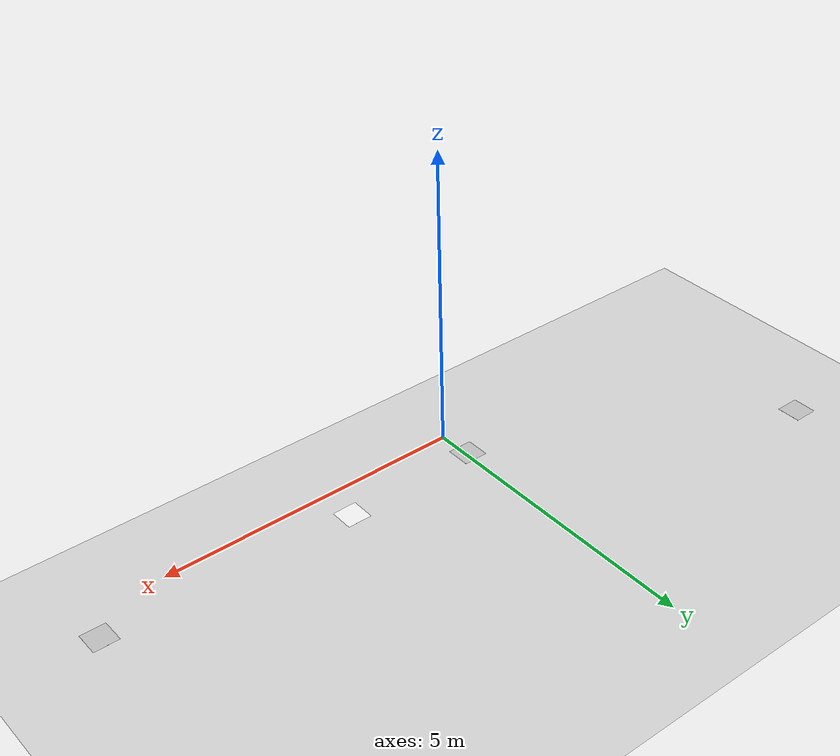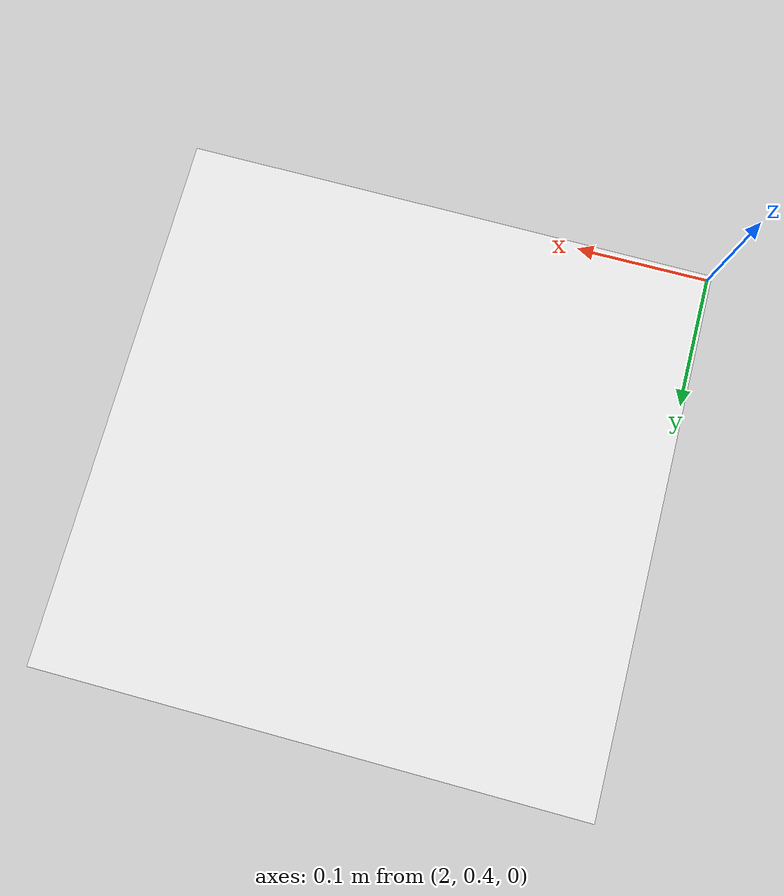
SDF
<sdf version="1.4">
 <world name="default">
  <include><uri>model://sun</uri></include>
  <include><uri>model://ground_plane</uri></include>
  <physics type="ode">
   <real_time_update_rate>1000.0</real_time_update_rate>
   <max_step_size>0.001</max_step_size>
   <real_time_factor>1</real_time_factor>
  </physics>
  <include><uri>model://qr_livingroom</uri><pose>2.2 0.6 0.01 0 0 1.57</pose></include>
  <include><uri>model://qr_corridor</uri><pose>-0.05 0.55 0.01 0 0 1.57</pose></include>
  <include><uri>model://qr_bedroom</uri><pose>6.26 0.48 0.01 0 0 1.57</pose></include>
  <include><uri>model://qr_kitchen</uri><pose>-4.81 3.10 0.01 0 0 1.57</pose></include>
  <scene><ambient>0.4 0.4 0.4 1</ambient><background>0.7 0.5 0.7 1</background><shadows>true</shadows></scene>
 </world>
</sdf>

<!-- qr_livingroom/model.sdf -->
<sdf version="1.4">
  <model name="qr_livingroom">
    <static>true</static>

    <link name="link">
      <visual name="visual">
        <geometry>
          <plane>
            <normal>0 0 1</normal>
            <size>0.4 0.4</size>
          </plane>
        </geometry>

        <material>
          <script>
            <uri>file://media/materials/scripts/gazebo.material</uri>
            <uri>file://media/materials/textures</uri>
            <name>Gazebo/White</name>
          </script>

          <ambient>1 1 1 1</ambient>
          <diffuse>1 1 1 1</diffuse>

          <texture>
            <uri>model://qr_livingroom/materials/textures/qr_livingroom.png</uri>
          </texture>
        </material>
      </visual>
    </link>
  </model>
</sdf>

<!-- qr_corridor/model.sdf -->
<sdf version="1.6">
  <model name="qr_corridor">
    <static>true</static>

    <link name="link">

      <visual name="visual">
        <geometry>
          <plane>
            <size>0.4 0.4</size>
          </plane>
        </geometry>

        <material>
          <script>
            <uri>model://qr_corridor/materials/scripts</uri>
            <uri>model://qr_corridor/materials/textures</uri>
            <name>QR/Corridor</name>
          </script>
        </material>
      </visual>

    </link>
  </model>
</sdf>

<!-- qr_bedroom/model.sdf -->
<sdf version="1.6">
  <model name="qr_bedroom">
    <static>true</static>

    <link name="link">

      <visual name="visual">
        <geometry>
          <plane>
            <size>0.4 0.4</size>
          </plane>
        </geometry>

        <material>
          <script>
            <uri>model://qr_bedroom/materials/scripts</uri>
            <uri>model://qr_bedroom/materials/textures</uri>
            <name>QR/BedRoom</name>
          </script>
        </material>
      </visual>

    </link>
  </model>
</sdf>

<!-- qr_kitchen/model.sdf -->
<sdf version="1.6">
  <model name="qr_kitchen">
    <static>true</static>

    <link name="link">

      <visual name="visual">
        <geometry>
          <plane>
            <size>0.4 0.4</size>
          </plane>
        </geometry>

        <material>
          <script>
            <uri>model://qr_kitchen/materials/scripts</uri>
            <uri>model://qr_kitchen/materials/textures</uri>
            <name>QR/Kitchen</name>
          </script>
        </material>
      </visual>

    </link>
  </model>
</sdf>
